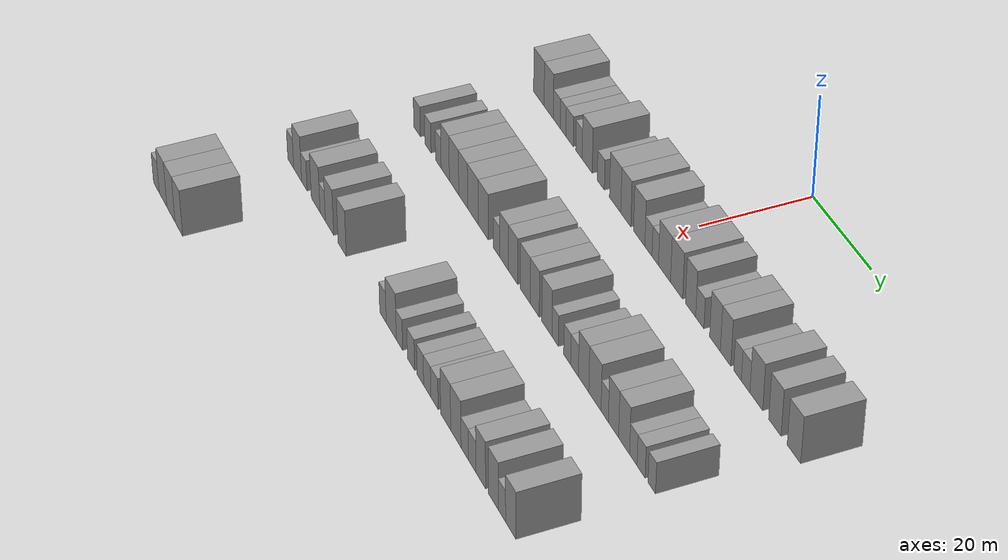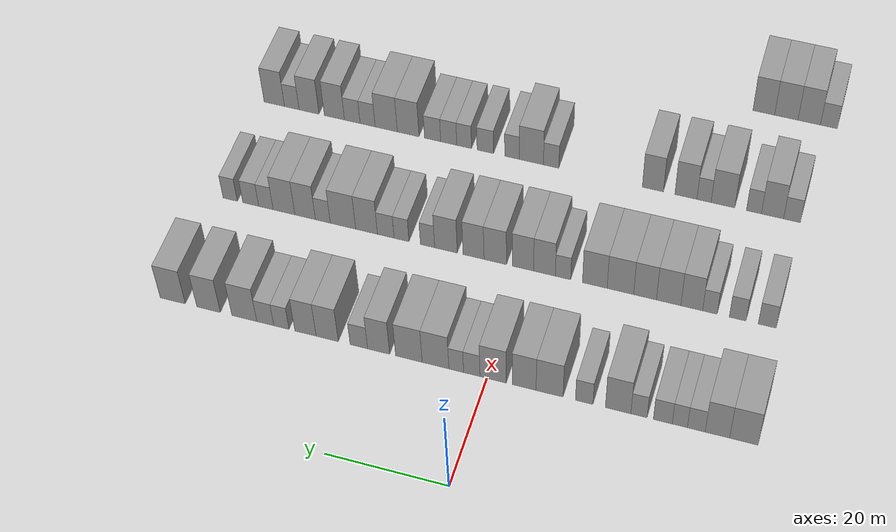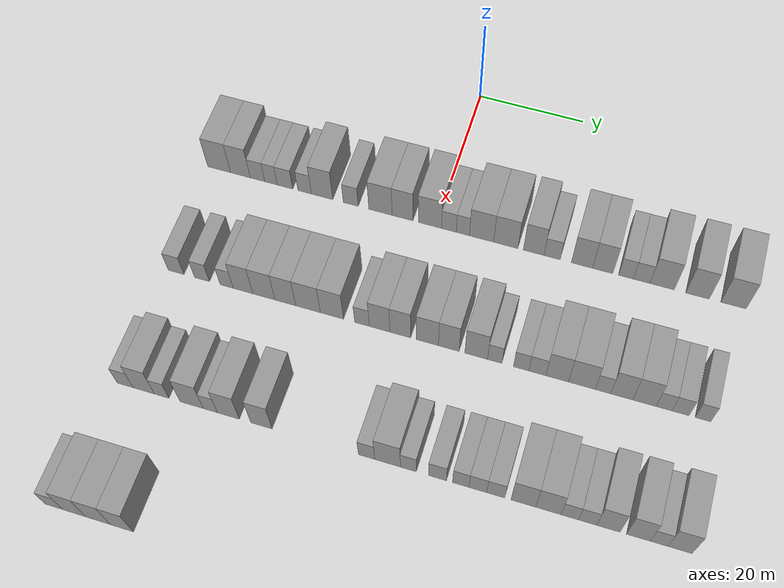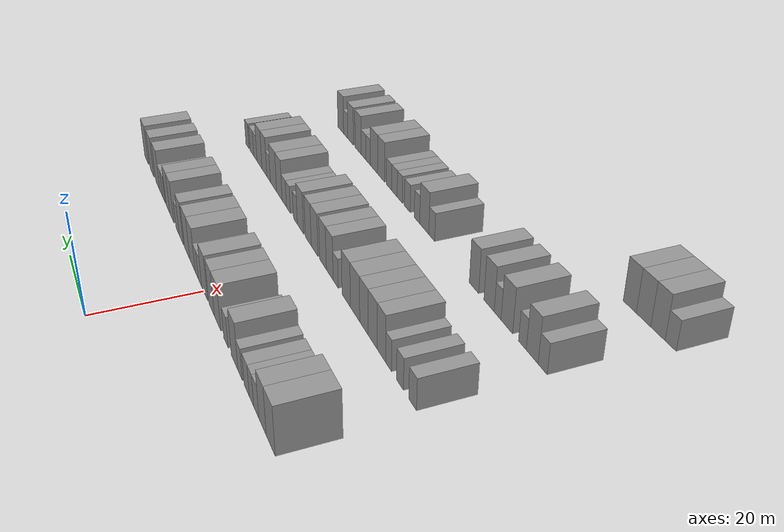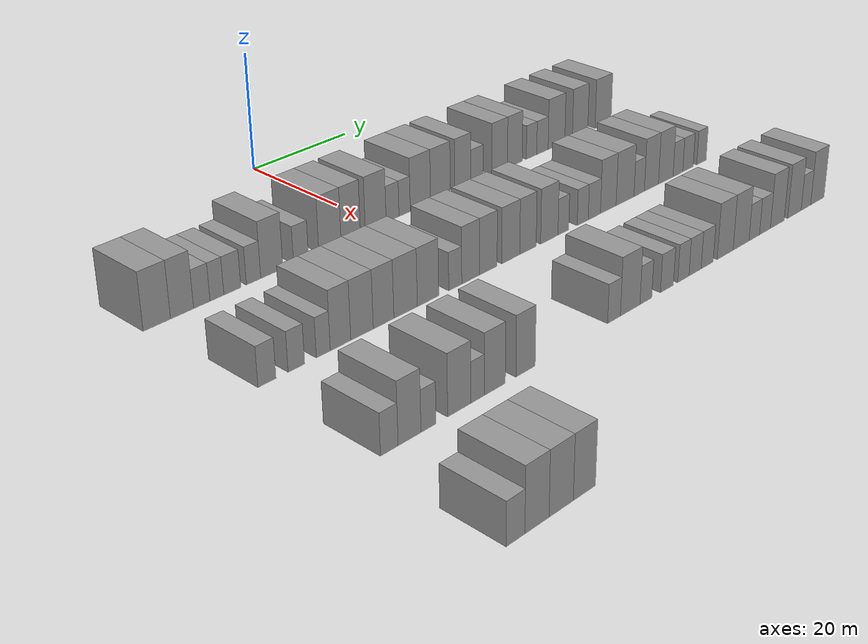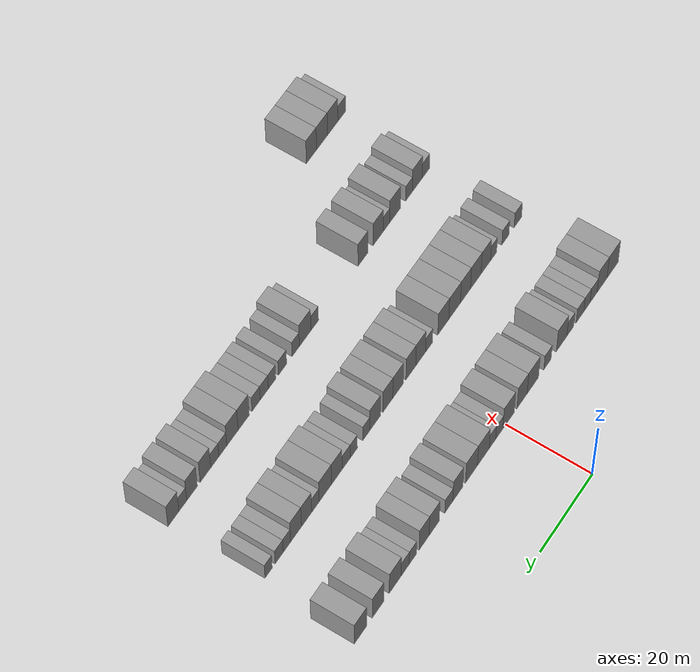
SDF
<sdf version="1.6">
 <world name="default">
  <model name="building_85">
   <static>1</static>
   <pose>25.0000 -41.2952 0 0.000000 0.000000 0.000000</pose>
   <link name="link">
    <pose>0 0 4.50 0 0 0</pose>
    <collision name="collision"><geometry><box><size>10.0000 4.4728 9.0000</size></box></geometry></collision>
    <visual name="visual">
     <cast_shadows>0</cast_shadows>
     <geometry><box><size>10.0000 4.4728 9.0000</size></box></geometry>
     <material>
      <script>
       <uri>model://grey_wall/materials/scripts</uri>
       <uri>model://grey_wall/materials/textures</uri>
       <name>vrc/grey_wall</name>
      </script>
     </material>
    </visual>
   </link>
  </model>
  <model name="building_86">
   <static>1</static>
   <pose>25.0000 -37.1239 0 0.000000 0.000000 0.000000</pose>
   <link name="link">
    <pose>0 0 4.50 0 0 0</pose>
    <collision name="collision"><geometry><box><size>10.0000 3.8698 9.0000</size></box></geometry></collision>
    <visual name="visual">
     <cast_shadows>0</cast_shadows>
     <geometry><box><size>10.0000 3.8698 9.0000</size></box></geometry>
     <material>
      <script>
       <uri>model://grey_wall/materials/scripts</uri>
       <uri>model://grey_wall/materials/textures</uri>
       <name>vrc/grey_wall</name>
      </script>
     </material>
    </visual>
   </link>
  </model>
  <model name="building_87">
   <static>1</static>
   <pose>25.0000 -33.7815 0 0.000000 0.000000 0.000000</pose>
   <link name="link">
    <pose>0 0 3.00 0 0 0</pose>
    <collision name="collision"><geometry><box><size>10.0000 2.8150 6.0000</size></box></geometry></collision>
    <visual name="visual">
     <cast_shadows>0</cast_shadows>
     <geometry><box><size>10.0000 2.8150 6.0000</size></box></geometry>
     <material>
      <script>
       <uri>model://grey_wall/materials/scripts</uri>
       <uri>model://grey_wall/materials/textures</uri>
       <name>vrc/grey_wall</name>
      </script>
     </material>
    </visual>
   </link>
  </model>
  <model name="building_88">
   <static>1</static>
   <pose>25.0000 -31.1665 0 0.000000 0.000000 0.000000</pose>
   <link name="link">
    <pose>0 0 3.00 0 0 0</pose>
    <collision name="collision"><geometry><box><size>10.0000 2.4151 6.0000</size></box></geometry></collision>
    <visual name="visual">
     <cast_shadows>0</cast_shadows>
     <geometry><box><size>10.0000 2.4151 6.0000</size></box></geometry>
     <material>
      <script>
       <uri>model://grey_wall/materials/scripts</uri>
       <uri>model://grey_wall/materials/textures</uri>
       <name>vrc/grey_wall</name>
      </script>
     </material>
    </visual>
   </link>
  </model>
  <model name="building_89">
   <static>1</static>
   <pose>25.0000 -28.4608 0 0.000000 0.000000 0.000000</pose>
   <link name="link">
    <pose>0 0 3.00 0 0 0</pose>
    <collision name="collision"><geometry><box><size>10.0000 2.9962 6.0000</size></box></geometry></collision>
    <visual name="visual">
     <cast_shadows>0</cast_shadows>
     <geometry><box><size>10.0000 2.9962 6.0000</size></box></geometry>
     <material>
      <script>
       <uri>model://grey_wall/materials/scripts</uri>
       <uri>model://grey_wall/materials/textures</uri>
       <name>vrc/grey_wall</name>
      </script>
     </material>
    </visual>
   </link>
  </model>
  <model name="building_90">
   <static>1</static>
   <pose>25.0000 -24.6631 0 0.000000 0.000000 0.000000</pose>
   <link name="link">
    <pose>0 0 3.00 0 0 0</pose>
    <collision name="collision"><geometry><box><size>10.0000 2.5992 6.0000</size></box></geometry></collision>
    <visual name="visual">
     <cast_shadows>0</cast_shadows>
     <geometry><box><size>10.0000 2.5992 6.0000</size></box></geometry>
     <material>
      <script>
       <uri>model://grey_wall/materials/scripts</uri>
       <uri>model://grey_wall/materials/textures</uri>
       <name>vrc/grey_wall</name>
      </script>
     </material>
    </visual>
   </link>
  </model>
  <model name="building_91">
   <static>1</static>
   <pose>25.0000 -21.3167 0 0.000000 0.000000 0.000000</pose>
   <link name="link">
    <pose>0 0 4.50 0 0 0</pose>
    <collision name="collision"><geometry><box><size>10.0000 4.0937 9.0000</size></box></geometry></collision>
    <visual name="visual">
     <cast_shadows>0</cast_shadows>
     <geometry><box><size>10.0000 4.0937 9.0000</size></box></geometry>
     <material>
      <script>
       <uri>model://grey_wall/materials/scripts</uri>
       <uri>model://grey_wall/materials/textures</uri>
       <name>vrc/grey_wall</name>
      </script>
     </material>
    </visual>
   </link>
  </model>
  <model name="building_92">
   <static>1</static>
   <pose>25.0000 -15.8494 0 0.000000 0.000000 0.000000</pose>
   <link name="link">
    <pose>0 0 3.00 0 0 0</pose>
    <collision name="collision"><geometry><box><size>10.0000 2.8408 6.0000</size></box></geometry></collision>
    <visual name="visual">
     <cast_shadows>0</cast_shadows>
     <geometry><box><size>10.0000 2.8408 6.0000</size></box></geometry>
     <material>
      <script>
       <uri>model://grey_wall/materials/scripts</uri>
       <uri>model://grey_wall/materials/textures</uri>
       <name>vrc/grey_wall</name>
      </script>
     </material>
    </visual>
   </link>
  </model>
  <model name="building_93">
   <static>1</static>
   <pose>25.0000 -10.2284 0 0.000000 0.000000 0.000000</pose>
   <link name="link">
    <pose>0 0 4.50 0 0 0</pose>
    <collision name="collision"><geometry><box><size>10.0000 4.4011 9.0000</size></box></geometry></collision>
    <visual name="visual">
     <cast_shadows>0</cast_shadows>
     <geometry><box><size>10.0000 4.4011 9.0000</size></box></geometry>
     <material>
      <script>
       <uri>model://grey_wall/materials/scripts</uri>
       <uri>model://grey_wall/materials/textures</uri>
       <name>vrc/grey_wall</name>
      </script>
     </material>
    </visual>
   </link>
  </model>
  <model name="building_94">
   <static>1</static>
   <pose>25.0000 -6.0852 0 0.000000 0.000000 0.000000</pose>
   <link name="link">
    <pose>0 0 4.50 0 0 0</pose>
    <collision name="collision"><geometry><box><size>10.0000 3.8854 9.0000</size></box></geometry></collision>
    <visual name="visual">
     <cast_shadows>0</cast_shadows>
     <geometry><box><size>10.0000 3.8854 9.0000</size></box></geometry>
     <material>
      <script>
       <uri>model://grey_wall/materials/scripts</uri>
       <uri>model://grey_wall/materials/textures</uri>
       <name>vrc/grey_wall</name>
      </script>
     </material>
    </visual>
   </link>
  </model>
  <model name="building_95">
   <static>1</static>
   <pose>25.0000 -0.9787 0 0.000000 0.000000 0.000000</pose>
   <link name="link">
    <pose>0 0 4.50 0 0 0</pose>
    <collision name="collision"><geometry><box><size>10.0000 4.3275 9.0000</size></box></geometry></collision>
    <visual name="visual">
     <cast_shadows>0</cast_shadows>
     <geometry><box><size>10.0000 4.3275 9.0000</size></box></geometry>
     <material>
      <script>
       <uri>model://grey_wall/materials/scripts</uri>
       <uri>model://grey_wall/materials/textures</uri>
       <name>vrc/grey_wall</name>
      </script>
     </material>
    </visual>
   </link>
  </model>
  <model name="building_96">
   <static>1</static>
   <pose>25.0000 2.5434 0 0.000000 0.000000 0.000000</pose>
   <link name="link">
    <pose>0 0 3.00 0 0 0</pose>
    <collision name="collision"><geometry><box><size>10.0000 2.7167 6.0000</size></box></geometry></collision>
    <visual name="visual">
     <cast_shadows>0</cast_shadows>
     <geometry><box><size>10.0000 2.7167 6.0000</size></box></geometry>
     <material>
      <script>
       <uri>model://grey_wall/materials/scripts</uri>
       <uri>model://grey_wall/materials/textures</uri>
       <name>vrc/grey_wall</name>
      </script>
     </material>
    </visual>
   </link>
  </model>
  <model name="building_97">
   <static>1</static>
   <pose>25.0000 5.1150 0 0.000000 0.000000 0.000000</pose>
   <link name="link">
    <pose>0 0 3.00 0 0 0</pose>
    <collision name="collision"><geometry><box><size>10.0000 2.4267 6.0000</size></box></geometry></collision>
    <visual name="visual">
     <cast_shadows>0</cast_shadows>
     <geometry><box><size>10.0000 2.4267 6.0000</size></box></geometry>
     <material>
      <script>
       <uri>model://grey_wall/materials/scripts</uri>
       <uri>model://grey_wall/materials/textures</uri>
       <name>vrc/grey_wall</name>
      </script>
     </material>
    </visual>
   </link>
  </model>
  <model name="building_98">
   <static>1</static>
   <pose>25.0000 8.5556 0 0.000000 0.000000 0.000000</pose>
   <link name="link">
    <pose>0 0 4.50 0 0 0</pose>
    <collision name="collision"><geometry><box><size>10.0000 4.4544 9.0000</size></box></geometry></collision>
    <visual name="visual">
     <cast_shadows>0</cast_shadows>
     <geometry><box><size>10.0000 4.4544 9.0000</size></box></geometry>
     <material>
      <script>
       <uri>model://grey_wall/materials/scripts</uri>
       <uri>model://grey_wall/materials/textures</uri>
       <name>vrc/grey_wall</name>
      </script>
     </material>
    </visual>
   </link>
  </model>
  <model name="building_99">
   <static>1</static>
   <pose>25.0000 12.9947 0 0.000000 0.000000 0.000000</pose>
   <link name="link">
    <pose>0 0 4.50 0 0 0</pose>
    <collision name="collision"><geometry><box><size>10.0000 4.4238 9.0000</size></box></geometry></collision>
    <visual name="visual">
     <cast_shadows>0</cast_shadows>
     <geometry><box><size>10.0000 4.4238 9.0000</size></box></geometry>
     <material>
      <script>
       <uri>model://grey_wall/materials/scripts</uri>
       <uri>model://grey_wall/materials/textures</uri>
       <name>vrc/grey_wall</name>
      </script>
     </material>
    </visual>
   </link>
  </model>
  <model name="building_100">
   <static>1</static>
   <pose>25.0000 18.0680 0 0.000000 0.000000 0.000000</pose>
   <link name="link">
    <pose>0 0 4.50 0 0 0</pose>
    <collision name="collision"><geometry><box><size>10.0000 3.7229 9.0000</size></box></geometry></collision>
    <visual name="visual">
     <cast_shadows>0</cast_shadows>
     <geometry><box><size>10.0000 3.7229 9.0000</size></box></geometry>
     <material>
      <script>
       <uri>model://grey_wall/materials/scripts</uri>
       <uri>model://grey_wall/materials/textures</uri>
       <name>vrc/grey_wall</name>
      </script>
     </material>
    </visual>
   </link>
  </model>
  <model name="building_101">
   <static>1</static>
   <pose>25.0000 21.3993 0 0.000000 0.000000 0.000000</pose>
   <link name="link">
    <pose>0 0 3.00 0 0 0</pose>
    <collision name="collision"><geometry><box><size>10.0000 2.9396 6.0000</size></box></geometry></collision>
    <visual name="visual">
     <cast_shadows>0</cast_shadows>
     <geometry><box><size>10.0000 2.9396 6.0000</size></box></geometry>
     <material>
      <script>
       <uri>model://grey_wall/materials/scripts</uri>
       <uri>model://grey_wall/materials/textures</uri>
       <name>vrc/grey_wall</name>
      </script>
     </material>
    </visual>
   </link>
  </model>
  <model name="building_102">
   <static>1</static>
   <pose>25.0000 26.7552 0 0.000000 0.000000 0.000000</pose>
   <link name="link">
    <pose>0 0 4.50 0 0 0</pose>
    <collision name="collision"><geometry><box><size>10.0000 3.7722 9.0000</size></box></geometry></collision>
    <visual name="visual">
     <cast_shadows>0</cast_shadows>
     <geometry><box><size>10.0000 3.7722 9.0000</size></box></geometry>
     <material>
      <script>
       <uri>model://grey_wall/materials/scripts</uri>
       <uri>model://grey_wall/materials/textures</uri>
       <name>vrc/grey_wall</name>
      </script>
     </material>
    </visual>
   </link>
  </model>
  <model name="building_103">
   <static>1</static>
   <pose>25.0000 30.4560 0 0.000000 0.000000 0.000000</pose>
   <link name="link">
    <pose>0 0 4.50 0 0 0</pose>
    <collision name="collision"><geometry><box><size>10.0000 3.6293 9.0000</size></box></geometry></collision>
    <visual name="visual">
     <cast_shadows>0</cast_shadows>
     <geometry><box><size>10.0000 3.6293 9.0000</size></box></geometry>
     <material>
      <script>
       <uri>model://grey_wall/materials/scripts</uri>
       <uri>model://grey_wall/materials/textures</uri>
       <name>vrc/grey_wall</name>
      </script>
     </material>
    </visual>
   </link>
  </model>
  <model name="building_104">
   <static>1</static>
   <pose>25.0000 34.5769 0 0.000000 0.000000 0.000000</pose>
   <link name="link">
    <pose>0 0 3.00 0 0 0</pose>
    <collision name="collision"><geometry><box><size>10.0000 2.6125 6.0000</size></box></geometry></collision>
    <visual name="visual">
     <cast_shadows>0</cast_shadows>
     <geometry><box><size>10.0000 2.6125 6.0000</size></box></geometry>
     <material>
      <script>
       <uri>model://grey_wall/materials/scripts</uri>
       <uri>model://grey_wall/materials/textures</uri>
       <name>vrc/grey_wall</name>
      </script>
     </material>
    </visual>
   </link>
  </model>
  <model name="building_105">
   <static>1</static>
   <pose>25.0000 37.3417 0 0.000000 0.000000 0.000000</pose>
   <link name="link">
    <pose>0 0 3.00 0 0 0</pose>
    <collision name="collision"><geometry><box><size>10.0000 2.9172 6.0000</size></box></geometry></collision>
    <visual name="visual">
     <cast_shadows>0</cast_shadows>
     <geometry><box><size>10.0000 2.9172 6.0000</size></box></geometry>
     <material>
      <script>
       <uri>model://grey_wall/materials/scripts</uri>
       <uri>model://grey_wall/materials/textures</uri>
       <name>vrc/grey_wall</name>
      </script>
     </material>
    </visual>
   </link>
  </model>
  <model name="building_106">
   <static>1</static>
   <pose>25.0000 40.9530 0 0.000000 0.000000 0.000000</pose>
   <link name="link">
    <pose>0 0 4.50 0 0 0</pose>
    <collision name="collision"><geometry><box><size>10.0000 4.3053 9.0000</size></box></geometry></collision>
    <visual name="visual">
     <cast_shadows>0</cast_shadows>
     <geometry><box><size>10.0000 4.3053 9.0000</size></box></geometry>
     <material>
      <script>
       <uri>model://grey_wall/materials/scripts</uri>
       <uri>model://grey_wall/materials/textures</uri>
       <name>vrc/grey_wall</name>
      </script>
     </material>
    </visual>
   </link>
  </model>
  <model name="building_107">
   <static>1</static>
   <pose>25.0000 47.1540 0 0.000000 0.000000 0.000000</pose>
   <link name="link">
    <pose>0 0 4.50 0 0 0</pose>
    <collision name="collision"><geometry><box><size>10.0000 4.0968 9.0000</size></box></geometry></collision>
    <visual name="visual">
     <cast_shadows>0</cast_shadows>
     <geometry><box><size>10.0000 4.0968 9.0000</size></box></geometry>
     <material>
      <script>
       <uri>model://grey_wall/materials/scripts</uri>
       <uri>model://grey_wall/materials/textures</uri>
       <name>vrc/grey_wall</name>
      </script>
     </material>
    </visual>
   </link>
  </model>
  <model name="building_108">
   <static>1</static>
   <pose>25.0000 53.3957 0 0.000000 0.000000 0.000000</pose>
   <link name="link">
    <pose>0 0 4.50 0 0 0</pose>
    <collision name="collision"><geometry><box><size>10.0000 4.3865 9.0000</size></box></geometry></collision>
    <visual name="visual">
     <cast_shadows>0</cast_shadows>
     <geometry><box><size>10.0000 4.3865 9.0000</size></box></geometry>
     <material>
      <script>
       <uri>model://grey_wall/materials/scripts</uri>
       <uri>model://grey_wall/materials/textures</uri>
       <name>vrc/grey_wall</name>
      </script>
     </material>
    </visual>
   </link>
  </model>
  <model name="building_282">
   <static>1</static>
   <pose>47.0000 -40.4966 0 0.000000 0.000000 0.000000</pose>
   <link name="link">
    <pose>0 0 3.00 0 0 0</pose>
    <collision name="collision"><geometry><box><size>10.0000 2.9390 6.0000</size></box></geometry></collision>
    <visual name="visual">
     <cast_shadows>0</cast_shadows>
     <geometry><box><size>10.0000 2.9390 6.0000</size></box></geometry>
     <material>
      <script>
       <uri>model://grey_wall/materials/scripts</uri>
       <uri>model://grey_wall/materials/textures</uri>
       <name>vrc/grey_wall</name>
      </script>
     </material>
    </visual>
   </link>
  </model>
  <model name="building_283">
   <static>1</static>
   <pose>47.0000 -35.6408 0 0.000000 0.000000 0.000000</pose>
   <link name="link">
    <pose>0 0 3.00 0 0 0</pose>
    <collision name="collision"><geometry><box><size>10.0000 2.7726 6.0000</size></box></geometry></collision>
    <visual name="visual">
     <cast_shadows>0</cast_shadows>
     <geometry><box><size>10.0000 2.7726 6.0000</size></box></geometry>
     <material>
      <script>
       <uri>model://grey_wall/materials/scripts</uri>
       <uri>model://grey_wall/materials/textures</uri>
       <name>vrc/grey_wall</name>
      </script>
     </material>
    </visual>
   </link>
  </model>
  <model name="building_284">
   <static>1</static>
   <pose>47.0000 -31.0491 0 0.000000 0.000000 0.000000</pose>
   <link name="link">
    <pose>0 0 3.00 0 0 0</pose>
    <collision name="collision"><geometry><box><size>10.0000 2.4108 6.0000</size></box></geometry></collision>
    <visual name="visual">
     <cast_shadows>0</cast_shadows>
     <geometry><box><size>10.0000 2.4108 6.0000</size></box></geometry>
     <material>
      <script>
       <uri>model://grey_wall/materials/scripts</uri>
       <uri>model://grey_wall/materials/textures</uri>
       <name>vrc/grey_wall</name>
      </script>
     </material>
    </visual>
   </link>
  </model>
  <model name="building_285">
   <static>1</static>
   <pose>47.0000 -28.0377 0 0.000000 0.000000 0.000000</pose>
   <link name="link">
    <pose>0 0 4.50 0 0 0</pose>
    <collision name="collision"><geometry><box><size>10.0000 3.6120 9.0000</size></box></geometry></collision>
    <visual name="visual">
     <cast_shadows>0</cast_shadows>
     <geometry><box><size>10.0000 3.6120 9.0000</size></box></geometry>
     <material>
      <script>
       <uri>model://grey_wall/materials/scripts</uri>
       <uri>model://grey_wall/materials/textures</uri>
       <name>vrc/grey_wall</name>
      </script>
     </material>
    </visual>
   </link>
  </model>
  <model name="building_286">
   <static>1</static>
   <pose>47.0000 -24.1980 0 0.000000 0.000000 0.000000</pose>
   <link name="link">
    <pose>0 0 4.50 0 0 0</pose>
    <collision name="collision"><geometry><box><size>10.0000 4.0673 9.0000</size></box></geometry></collision>
    <visual name="visual">
     <cast_shadows>0</cast_shadows>
     <geometry><box><size>10.0000 4.0673 9.0000</size></box></geometry>
     <material>
      <script>
       <uri>model://grey_wall/materials/scripts</uri>
       <uri>model://grey_wall/materials/textures</uri>
       <name>vrc/grey_wall</name>
      </script>
     </material>
    </visual>
   </link>
  </model>
  <model name="building_287">
   <static>1</static>
   <pose>47.0000 -20.2529 0 0.000000 0.000000 0.000000</pose>
   <link name="link">
    <pose>0 0 4.50 0 0 0</pose>
    <collision name="collision"><geometry><box><size>10.0000 3.8229 9.0000</size></box></geometry></collision>
    <visual name="visual">
     <cast_shadows>0</cast_shadows>
     <geometry><box><size>10.0000 3.8229 9.0000</size></box></geometry>
     <material>
      <script>
       <uri>model://grey_wall/materials/scripts</uri>
       <uri>model://grey_wall/materials/textures</uri>
       <name>vrc/grey_wall</name>
      </script>
     </material>
    </visual>
   </link>
  </model>
  <model name="building_288">
   <static>1</static>
   <pose>47.0000 -16.1085 0 0.000000 0.000000 0.000000</pose>
   <link name="link">
    <pose>0 0 4.50 0 0 0</pose>
    <collision name="collision"><geometry><box><size>10.0000 4.4660 9.0000</size></box></geometry></collision>
    <visual name="visual">
     <cast_shadows>0</cast_shadows>
     <geometry><box><size>10.0000 4.4660 9.0000</size></box></geometry>
     <material>
      <script>
       <uri>model://grey_wall/materials/scripts</uri>
       <uri>model://grey_wall/materials/textures</uri>
       <name>vrc/grey_wall</name>
      </script>
     </material>
    </visual>
   </link>
  </model>
  <model name="building_289">
   <static>1</static>
   <pose>47.0000 -11.7904 0 0.000000 0.000000 0.000000</pose>
   <link name="link">
    <pose>0 0 4.50 0 0 0</pose>
    <collision name="collision"><geometry><box><size>10.0000 4.1702 9.0000</size></box></geometry></collision>
    <visual name="visual">
     <cast_shadows>0</cast_shadows>
     <geometry><box><size>10.0000 4.1702 9.0000</size></box></geometry>
     <material>
      <script>
       <uri>model://grey_wall/materials/scripts</uri>
       <uri>model://grey_wall/materials/textures</uri>
       <name>vrc/grey_wall</name>
      </script>
     </material>
    </visual>
   </link>
  </model>
  <model name="building_290">
   <static>1</static>
   <pose>47.0000 -6.3978 0 0.000000 0.000000 0.000000</pose>
   <link name="link">
    <pose>0 0 3.00 0 0 0</pose>
    <collision name="collision"><geometry><box><size>10.0000 2.6151 6.0000</size></box></geometry></collision>
    <visual name="visual">
     <cast_shadows>0</cast_shadows>
     <geometry><box><size>10.0000 2.6151 6.0000</size></box></geometry>
     <material>
      <script>
       <uri>model://grey_wall/materials/scripts</uri>
       <uri>model://grey_wall/materials/textures</uri>
       <name>vrc/grey_wall</name>
      </script>
     </material>
    </visual>
   </link>
  </model>
  <model name="building_291">
   <static>1</static>
   <pose>47.0000 -3.2429 0 0.000000 0.000000 0.000000</pose>
   <link name="link">
    <pose>0 0 4.50 0 0 0</pose>
    <collision name="collision"><geometry><box><size>10.0000 3.6947 9.0000</size></box></geometry></collision>
    <visual name="visual">
     <cast_shadows>0</cast_shadows>
     <geometry><box><size>10.0000 3.6947 9.0000</size></box></geometry>
     <material>
      <script>
       <uri>model://grey_wall/materials/scripts</uri>
       <uri>model://grey_wall/materials/textures</uri>
       <name>vrc/grey_wall</name>
      </script>
     </material>
    </visual>
   </link>
  </model>
  <model name="building_292">
   <static>1</static>
   <pose>47.0000 0.4340 0 0.000000 0.000000 0.000000</pose>
   <link name="link">
    <pose>0 0 4.50 0 0 0</pose>
    <collision name="collision"><geometry><box><size>10.0000 3.6590 9.0000</size></box></geometry></collision>
    <visual name="visual">
     <cast_shadows>0</cast_shadows>
     <geometry><box><size>10.0000 3.6590 9.0000</size></box></geometry>
     <material>
      <script>
       <uri>model://grey_wall/materials/scripts</uri>
       <uri>model://grey_wall/materials/textures</uri>
       <name>vrc/grey_wall</name>
      </script>
     </material>
    </visual>
   </link>
  </model>
  <model name="building_293">
   <static>1</static>
   <pose>47.0000 5.2074 0 0.000000 0.000000 0.000000</pose>
   <link name="link">
    <pose>0 0 4.50 0 0 0</pose>
    <collision name="collision"><geometry><box><size>10.0000 3.8877 9.0000</size></box></geometry></collision>
    <visual name="visual">
     <cast_shadows>0</cast_shadows>
     <geometry><box><size>10.0000 3.8877 9.0000</size></box></geometry>
     <material>
      <script>
       <uri>model://grey_wall/materials/scripts</uri>
       <uri>model://grey_wall/materials/textures</uri>
       <name>vrc/grey_wall</name>
      </script>
     </material>
    </visual>
   </link>
  </model>
  <model name="building_294">
   <static>1</static>
   <pose>47.0000 8.9621 0 0.000000 0.000000 0.000000</pose>
   <link name="link">
    <pose>0 0 4.50 0 0 0</pose>
    <collision name="collision"><geometry><box><size>10.0000 3.6218 9.0000</size></box></geometry></collision>
    <visual name="visual">
     <cast_shadows>0</cast_shadows>
     <geometry><box><size>10.0000 3.6218 9.0000</size></box></geometry>
     <material>
      <script>
       <uri>model://grey_wall/materials/scripts</uri>
       <uri>model://grey_wall/materials/textures</uri>
       <name>vrc/grey_wall</name>
      </script>
     </material>
    </visual>
   </link>
  </model>
  <model name="building_295">
   <static>1</static>
   <pose>47.0000 13.7423 0 0.000000 0.000000 0.000000</pose>
   <link name="link">
    <pose>0 0 4.50 0 0 0</pose>
    <collision name="collision"><geometry><box><size>10.0000 3.9386 9.0000</size></box></geometry></collision>
    <visual name="visual">
     <cast_shadows>0</cast_shadows>
     <geometry><box><size>10.0000 3.9386 9.0000</size></box></geometry>
     <material>
      <script>
       <uri>model://grey_wall/materials/scripts</uri>
       <uri>model://grey_wall/materials/textures</uri>
       <name>vrc/grey_wall</name>
      </script>
     </material>
    </visual>
   </link>
  </model>
  <model name="building_296">
   <static>1</static>
   <pose>47.0000 16.9506 0 0.000000 0.000000 0.000000</pose>
   <link name="link">
    <pose>0 0 3.00 0 0 0</pose>
    <collision name="collision"><geometry><box><size>10.0000 2.4780 6.0000</size></box></geometry></collision>
    <visual name="visual">
     <cast_shadows>0</cast_shadows>
     <geometry><box><size>10.0000 2.4780 6.0000</size></box></geometry>
     <material>
      <script>
       <uri>model://grey_wall/materials/scripts</uri>
       <uri>model://grey_wall/materials/textures</uri>
       <name>vrc/grey_wall</name>
      </script>
     </material>
    </visual>
   </link>
  </model>
  <model name="building_297">
   <static>1</static>
   <pose>47.0000 21.4986 0 0.000000 0.000000 0.000000</pose>
   <link name="link">
    <pose>0 0 3.00 0 0 0</pose>
    <collision name="collision"><geometry><box><size>10.0000 2.6181 6.0000</size></box></geometry></collision>
    <visual name="visual">
     <cast_shadows>0</cast_shadows>
     <geometry><box><size>10.0000 2.6181 6.0000</size></box></geometry>
     <material>
      <script>
       <uri>model://grey_wall/materials/scripts</uri>
       <uri>model://grey_wall/materials/textures</uri>
       <name>vrc/grey_wall</name>
      </script>
     </material>
    </visual>
   </link>
  </model>
  <model name="building_298">
   <static>1</static>
   <pose>47.0000 24.2718 0 0.000000 0.000000 0.000000</pose>
   <link name="link">
    <pose>0 0 3.00 0 0 0</pose>
    <collision name="collision"><geometry><box><size>10.0000 2.9282 6.0000</size></box></geometry></collision>
    <visual name="visual">
     <cast_shadows>0</cast_shadows>
     <geometry><box><size>10.0000 2.9282 6.0000</size></box></geometry>
     <material>
      <script>
       <uri>model://grey_wall/materials/scripts</uri>
       <uri>model://grey_wall/materials/textures</uri>
       <name>vrc/grey_wall</name>
      </script>
     </material>
    </visual>
   </link>
  </model>
  <model name="building_299">
   <static>1</static>
   <pose>47.0000 27.6601 0 0.000000 0.000000 0.000000</pose>
   <link name="link">
    <pose>0 0 4.50 0 0 0</pose>
    <collision name="collision"><geometry><box><size>10.0000 3.8485 9.0000</size></box></geometry></collision>
    <visual name="visual">
     <cast_shadows>0</cast_shadows>
     <geometry><box><size>10.0000 3.8485 9.0000</size></box></geometry>
     <material>
      <script>
       <uri>model://grey_wall/materials/scripts</uri>
       <uri>model://grey_wall/materials/textures</uri>
       <name>vrc/grey_wall</name>
      </script>
     </material>
    </visual>
   </link>
  </model>
  <model name="building_300">
   <static>1</static>
   <pose>47.0000 31.8330 0 0.000000 0.000000 0.000000</pose>
   <link name="link">
    <pose>0 0 4.50 0 0 0</pose>
    <collision name="collision"><geometry><box><size>10.0000 4.4974 9.0000</size></box></geometry></collision>
    <visual name="visual">
     <cast_shadows>0</cast_shadows>
     <geometry><box><size>10.0000 4.4974 9.0000</size></box></geometry>
     <material>
      <script>
       <uri>model://grey_wall/materials/scripts</uri>
       <uri>model://grey_wall/materials/textures</uri>
       <name>vrc/grey_wall</name>
      </script>
     </material>
    </visual>
   </link>
  </model>
  <model name="building_301">
   <static>1</static>
   <pose>47.0000 35.4019 0 0.000000 0.000000 0.000000</pose>
   <link name="link">
    <pose>0 0 3.00 0 0 0</pose>
    <collision name="collision"><geometry><box><size>10.0000 2.6404 6.0000</size></box></geometry></collision>
    <visual name="visual">
     <cast_shadows>0</cast_shadows>
     <geometry><box><size>10.0000 2.6404 6.0000</size></box></geometry>
     <material>
      <script>
       <uri>model://grey_wall/materials/scripts</uri>
       <uri>model://grey_wall/materials/textures</uri>
       <name>vrc/grey_wall</name>
      </script>
     </material>
    </visual>
   </link>
  </model>
  <model name="building_302">
   <static>1</static>
   <pose>47.0000 38.5589 0 0.000000 0.000000 0.000000</pose>
   <link name="link">
    <pose>0 0 4.50 0 0 0</pose>
    <collision name="collision"><geometry><box><size>10.0000 3.6736 9.0000</size></box></geometry></collision>
    <visual name="visual">
     <cast_shadows>0</cast_shadows>
     <geometry><box><size>10.0000 3.6736 9.0000</size></box></geometry>
     <material>
      <script>
       <uri>model://grey_wall/materials/scripts</uri>
       <uri>model://grey_wall/materials/textures</uri>
       <name>vrc/grey_wall</name>
      </script>
     </material>
    </visual>
   </link>
  </model>
  <model name="building_303">
   <static>1</static>
   <pose>47.0000 42.3460 0 0.000000 0.000000 0.000000</pose>
   <link name="link">
    <pose>0 0 4.50 0 0 0</pose>
    <collision name="collision"><geometry><box><size>10.0000 3.9005 9.0000</size></box></geometry></collision>
    <visual name="visual">
     <cast_shadows>0</cast_shadows>
     <geometry><box><size>10.0000 3.9005 9.0000</size></box></geometry>
     <material>
      <script>
       <uri>model://grey_wall/materials/scripts</uri>
       <uri>model://grey_wall/materials/textures</uri>
       <name>vrc/grey_wall</name>
      </script>
     </material>
    </visual>
   </link>
  </model>
  <model name="building_304">
   <static>1</static>
   <pose>47.0000 45.6006 0 0.000000 0.000000 0.000000</pose>
   <link name="link">
    <pose>0 0 3.00 0 0 0</pose>
    <collision name="collision"><geometry><box><size>10.0000 2.6086 6.0000</size></box></geometry></collision>
    <visual name="visual">
     <cast_shadows>0</cast_shadows>
     <geometry><box><size>10.0000 2.6086 6.0000</size></box></geometry>
     <material>
      <script>
       <uri>model://grey_wall/materials/scripts</uri>
       <uri>model://grey_wall/materials/textures</uri>
       <name>vrc/grey_wall</name>
      </script>
     </material>
    </visual>
   </link>
  </model>
  <model name="building_305">
   <static>1</static>
   <pose>47.0000 48.3323 0 0.000000 0.000000 0.000000</pose>
   <link name="link">
    <pose>0 0 3.00 0 0 0</pose>
    <collision name="collision"><geometry><box><size>10.0000 2.8547 6.0000</size></box></geometry></collision>
    <visual name="visual">
     <cast_shadows>0</cast_shadows>
     <geometry><box><size>10.0000 2.8547 6.0000</size></box></geometry>
     <material>
      <script>
       <uri>model://grey_wall/materials/scripts</uri>
       <uri>model://grey_wall/materials/textures</uri>
       <name>vrc/grey_wall</name>
      </script>
     </material>
    </visual>
   </link>
  </model>
  <model name="building_306">
   <static>1</static>
   <pose>47.0000 52.0493 0 0.000000 0.000000 0.000000</pose>
   <link name="link">
    <pose>0 0 3.00 0 0 0</pose>
    <collision name="collision"><geometry><box><size>10.0000 2.5794 6.0000</size></box></geometry></collision>
    <visual name="visual">
     <cast_shadows>0</cast_shadows>
     <geometry><box><size>10.0000 2.5794 6.0000</size></box></geometry>
     <material>
      <script>
       <uri>model://grey_wall/materials/scripts</uri>
       <uri>model://grey_wall/materials/textures</uri>
       <name>vrc/grey_wall</name>
      </script>
     </material>
    </visual>
   </link>
  </model>
  <model name="building_466">
   <static>1</static>
   <pose>69.0000 -40.2603 0 0.000000 0.000000 0.000000</pose>
   <link name="link">
    <pose>0 0 3.00 0 0 0</pose>
    <collision name="collision"><geometry><box><size>10.0000 2.8595 6.0000</size></box></geometry></collision>
    <visual name="visual">
     <cast_shadows>0</cast_shadows>
     <geometry><box><size>10.0000 2.8595 6.0000</size></box></geometry>
     <material>
      <script>
       <uri>model://grey_wall/materials/scripts</uri>
       <uri>model://grey_wall/materials/textures</uri>
       <name>vrc/grey_wall</name>
      </script>
     </material>
    </visual>
   </link>
  </model>
  <model name="building_467">
   <static>1</static>
   <pose>69.0000 -36.9285 0 0.000000 0.000000 0.000000</pose>
   <link name="link">
    <pose>0 0 4.50 0 0 0</pose>
    <collision name="collision"><geometry><box><size>10.0000 3.8042 9.0000</size></box></geometry></collision>
    <visual name="visual">
     <cast_shadows>0</cast_shadows>
     <geometry><box><size>10.0000 3.8042 9.0000</size></box></geometry>
     <material>
      <script>
       <uri>model://grey_wall/materials/scripts</uri>
       <uri>model://grey_wall/materials/textures</uri>
       <name>vrc/grey_wall</name>
      </script>
     </material>
    </visual>
   </link>
  </model>
  <model name="building_468">
   <static>1</static>
   <pose>69.0000 -33.7433 0 0.000000 0.000000 0.000000</pose>
   <link name="link">
    <pose>0 0 3.00 0 0 0</pose>
    <collision name="collision"><geometry><box><size>10.0000 2.5661 6.0000</size></box></geometry></collision>
    <visual name="visual">
     <cast_shadows>0</cast_shadows>
     <geometry><box><size>10.0000 2.5661 6.0000</size></box></geometry>
     <material>
      <script>
       <uri>model://grey_wall/materials/scripts</uri>
       <uri>model://grey_wall/materials/textures</uri>
       <name>vrc/grey_wall</name>
      </script>
     </material>
    </visual>
   </link>
  </model>
  <model name="building_469">
   <static>1</static>
   <pose>69.0000 -28.4157 0 0.000000 0.000000 0.000000</pose>
   <link name="link">
    <pose>0 0 4.50 0 0 0</pose>
    <collision name="collision"><geometry><box><size>10.0000 4.0891 9.0000</size></box></geometry></collision>
    <visual name="visual">
     <cast_shadows>0</cast_shadows>
     <geometry><box><size>10.0000 4.0891 9.0000</size></box></geometry>
     <material>
      <script>
       <uri>model://grey_wall/materials/scripts</uri>
       <uri>model://grey_wall/materials/textures</uri>
       <name>vrc/grey_wall</name>
      </script>
     </material>
    </visual>
   </link>
  </model>
  <model name="building_470">
   <static>1</static>
   <pose>69.0000 -25.1430 0 0.000000 0.000000 0.000000</pose>
   <link name="link">
    <pose>0 0 3.00 0 0 0</pose>
    <collision name="collision"><geometry><box><size>10.0000 2.4563 6.0000</size></box></geometry></collision>
    <visual name="visual">
     <cast_shadows>0</cast_shadows>
     <geometry><box><size>10.0000 2.4563 6.0000</size></box></geometry>
     <material>
      <script>
       <uri>model://grey_wall/materials/scripts</uri>
       <uri>model://grey_wall/materials/textures</uri>
       <name>vrc/grey_wall</name>
      </script>
     </material>
    </visual>
   </link>
  </model>
  <model name="building_471">
   <static>1</static>
   <pose>69.0000 -21.9995 0 0.000000 0.000000 0.000000</pose>
   <link name="link">
    <pose>0 0 4.50 0 0 0</pose>
    <collision name="collision"><geometry><box><size>10.0000 3.8306 9.0000</size></box></geometry></collision>
    <visual name="visual">
     <cast_shadows>0</cast_shadows>
     <geometry><box><size>10.0000 3.8306 9.0000</size></box></geometry>
     <material>
      <script>
       <uri>model://grey_wall/materials/scripts</uri>
       <uri>model://grey_wall/materials/textures</uri>
       <name>vrc/grey_wall</name>
      </script>
     </material>
    </visual>
   </link>
  </model>
  <model name="building_472">
   <static>1</static>
   <pose>69.0000 -16.2408 0 0.000000 0.000000 0.000000</pose>
   <link name="link">
    <pose>0 0 4.50 0 0 0</pose>
    <collision name="collision"><geometry><box><size>10.0000 3.6868 9.0000</size></box></geometry></collision>
    <visual name="visual">
     <cast_shadows>0</cast_shadows>
     <geometry><box><size>10.0000 3.6868 9.0000</size></box></geometry>
     <material>
      <script>
       <uri>model://grey_wall/materials/scripts</uri>
       <uri>model://grey_wall/materials/textures</uri>
       <name>vrc/grey_wall</name>
      </script>
     </material>
    </visual>
   </link>
  </model>
  <model name="building_473">
   <static>1</static>
   <pose>69.0000 1.7168 0 0.000000 0.000000 0.000000</pose>
   <link name="link">
    <pose>0 0 3.00 0 0 0</pose>
    <collision name="collision"><geometry><box><size>10.0000 2.7428 6.0000</size></box></geometry></collision>
    <visual name="visual">
     <cast_shadows>0</cast_shadows>
     <geometry><box><size>10.0000 2.7428 6.0000</size></box></geometry>
     <material>
      <script>
       <uri>model://grey_wall/materials/scripts</uri>
       <uri>model://grey_wall/materials/textures</uri>
       <name>vrc/grey_wall</name>
      </script>
     </material>
    </visual>
   </link>
  </model>
  <model name="building_474">
   <static>1</static>
   <pose>69.0000 5.2394 0 0.000000 0.000000 0.000000</pose>
   <link name="link">
    <pose>0 0 4.50 0 0 0</pose>
    <collision name="collision"><geometry><box><size>10.0000 4.3022 9.0000</size></box></geometry></collision>
    <visual name="visual">
     <cast_shadows>0</cast_shadows>
     <geometry><box><size>10.0000 4.3022 9.0000</size></box></geometry>
     <material>
      <script>
       <uri>model://grey_wall/materials/scripts</uri>
       <uri>model://grey_wall/materials/textures</uri>
       <name>vrc/grey_wall</name>
      </script>
     </material>
    </visual>
   </link>
  </model>
  <model name="building_475">
   <static>1</static>
   <pose>69.0000 8.7131 0 0.000000 0.000000 0.000000</pose>
   <link name="link">
    <pose>0 0 3.00 0 0 0</pose>
    <collision name="collision"><geometry><box><size>10.0000 2.6453 6.0000</size></box></geometry></collision>
    <visual name="visual">
     <cast_shadows>0</cast_shadows>
     <geometry><box><size>10.0000 2.6453 6.0000</size></box></geometry>
     <material>
      <script>
       <uri>model://grey_wall/materials/scripts</uri>
       <uri>model://grey_wall/materials/textures</uri>
       <name>vrc/grey_wall</name>
      </script>
     </material>
    </visual>
   </link>
  </model>
  <model name="building_476">
   <static>1</static>
   <pose>69.0000 13.5274 0 0.000000 0.000000 0.000000</pose>
   <link name="link">
    <pose>0 0 3.00 0 0 0</pose>
    <collision name="collision"><geometry><box><size>10.0000 2.9832 6.0000</size></box></geometry></collision>
    <visual name="visual">
     <cast_shadows>0</cast_shadows>
     <geometry><box><size>10.0000 2.9832 6.0000</size></box></geometry>
     <material>
      <script>
       <uri>model://grey_wall/materials/scripts</uri>
       <uri>model://grey_wall/materials/textures</uri>
       <name>vrc/grey_wall</name>
      </script>
     </material>
    </visual>
   </link>
  </model>
  <model name="building_477">
   <static>1</static>
   <pose>69.0000 17.3593 0 0.000000 0.000000 0.000000</pose>
   <link name="link">
    <pose>0 0 3.00 0 0 0</pose>
    <collision name="collision"><geometry><box><size>10.0000 2.6807 6.0000</size></box></geometry></collision>
    <visual name="visual">
     <cast_shadows>0</cast_shadows>
     <geometry><box><size>10.0000 2.6807 6.0000</size></box></geometry>
     <material>
      <script>
       <uri>model://grey_wall/materials/scripts</uri>
       <uri>model://grey_wall/materials/textures</uri>
       <name>vrc/grey_wall</name>
      </script>
     </material>
    </visual>
   </link>
  </model>
  <model name="building_478">
   <static>1</static>
   <pose>69.0000 20.1623 0 0.000000 0.000000 0.000000</pose>
   <link name="link">
    <pose>0 0 3.00 0 0 0</pose>
    <collision name="collision"><geometry><box><size>10.0000 2.9253 6.0000</size></box></geometry></collision>
    <visual name="visual">
     <cast_shadows>0</cast_shadows>
     <geometry><box><size>10.0000 2.9253 6.0000</size></box></geometry>
     <material>
      <script>
       <uri>model://grey_wall/materials/scripts</uri>
       <uri>model://grey_wall/materials/textures</uri>
       <name>vrc/grey_wall</name>
      </script>
     </material>
    </visual>
   </link>
  </model>
  <model name="building_479">
   <static>1</static>
   <pose>69.0000 23.0969 0 0.000000 0.000000 0.000000</pose>
   <link name="link">
    <pose>0 0 3.00 0 0 0</pose>
    <collision name="collision"><geometry><box><size>10.0000 2.9439 6.0000</size></box></geometry></collision>
    <visual name="visual">
     <cast_shadows>0</cast_shadows>
     <geometry><box><size>10.0000 2.9439 6.0000</size></box></geometry>
     <material>
      <script>
       <uri>model://grey_wall/materials/scripts</uri>
       <uri>model://grey_wall/materials/textures</uri>
       <name>vrc/grey_wall</name>
      </script>
     </material>
    </visual>
   </link>
  </model>
  <model name="building_480">
   <static>1</static>
   <pose>69.0000 27.5644 0 0.000000 0.000000 0.000000</pose>
   <link name="link">
    <pose>0 0 4.50 0 0 0</pose>
    <collision name="collision"><geometry><box><size>10.0000 3.9912 9.0000</size></box></geometry></collision>
    <visual name="visual">
     <cast_shadows>0</cast_shadows>
     <geometry><box><size>10.0000 3.9912 9.0000</size></box></geometry>
     <material>
      <script>
       <uri>model://grey_wall/materials/scripts</uri>
       <uri>model://grey_wall/materials/textures</uri>
       <name>vrc/grey_wall</name>
      </script>
     </material>
    </visual>
   </link>
  </model>
  <model name="building_481">
   <static>1</static>
   <pose>69.0000 31.5953 0 0.000000 0.000000 0.000000</pose>
   <link name="link">
    <pose>0 0 4.50 0 0 0</pose>
    <collision name="collision"><geometry><box><size>10.0000 4.0706 9.0000</size></box></geometry></collision>
    <visual name="visual">
     <cast_shadows>0</cast_shadows>
     <geometry><box><size>10.0000 4.0706 9.0000</size></box></geometry>
     <material>
      <script>
       <uri>model://grey_wall/materials/scripts</uri>
       <uri>model://grey_wall/materials/textures</uri>
       <name>vrc/grey_wall</name>
      </script>
     </material>
    </visual>
   </link>
  </model>
  <model name="building_482">
   <static>1</static>
   <pose>69.0000 35.0216 0 0.000000 0.000000 0.000000</pose>
   <link name="link">
    <pose>0 0 3.00 0 0 0</pose>
    <collision name="collision"><geometry><box><size>10.0000 2.7820 6.0000</size></box></geometry></collision>
    <visual name="visual">
     <cast_shadows>0</cast_shadows>
     <geometry><box><size>10.0000 2.7820 6.0000</size></box></geometry>
     <material>
      <script>
       <uri>model://grey_wall/materials/scripts</uri>
       <uri>model://grey_wall/materials/textures</uri>
       <name>vrc/grey_wall</name>
      </script>
     </material>
    </visual>
   </link>
  </model>
  <model name="building_483">
   <static>1</static>
   <pose>69.0000 37.8592 0 0.000000 0.000000 0.000000</pose>
   <link name="link">
    <pose>0 0 3.00 0 0 0</pose>
    <collision name="collision"><geometry><box><size>10.0000 2.8930 6.0000</size></box></geometry></collision>
    <visual name="visual">
     <cast_shadows>0</cast_shadows>
     <geometry><box><size>10.0000 2.8930 6.0000</size></box></geometry>
     <material>
      <script>
       <uri>model://grey_wall/materials/scripts</uri>
       <uri>model://grey_wall/materials/textures</uri>
       <name>vrc/grey_wall</name>
      </script>
     </material>
    </visual>
   </link>
  </model>
  <model name="building_484">
   <static>1</static>
   <pose>69.0000 41.1710 0 0.000000 0.000000 0.000000</pose>
   <link name="link">
    <pose>0 0 4.50 0 0 0</pose>
    <collision name="collision"><geometry><box><size>10.0000 3.7308 9.0000</size></box></geometry></collision>
    <visual name="visual">
     <cast_shadows>0</cast_shadows>
     <geometry><box><size>10.0000 3.7308 9.0000</size></box></geometry>
     <material>
      <script>
       <uri>model://grey_wall/materials/scripts</uri>
       <uri>model://grey_wall/materials/textures</uri>
       <name>vrc/grey_wall</name>
      </script>
     </material>
    </visual>
   </link>
  </model>
  <model name="building_485">
   <static>1</static>
   <pose>69.0000 45.8991 0 0.000000 0.000000 0.000000</pose>
   <link name="link">
    <pose>0 0 4.50 0 0 0</pose>
    <collision name="collision"><geometry><box><size>10.0000 3.7254 9.0000</size></box></geometry></collision>
    <visual name="visual">
     <cast_shadows>0</cast_shadows>
     <geometry><box><size>10.0000 3.7254 9.0000</size></box></geometry>
     <material>
      <script>
       <uri>model://grey_wall/materials/scripts</uri>
       <uri>model://grey_wall/materials/textures</uri>
       <name>vrc/grey_wall</name>
      </script>
     </material>
    </visual>
   </link>
  </model>
  <model name="building_486">
   <static>1</static>
   <pose>69.0000 49.1210 0 0.000000 0.000000 0.000000</pose>
   <link name="link">
    <pose>0 0 3.00 0 0 0</pose>
    <collision name="collision"><geometry><box><size>10.0000 2.7184 6.0000</size></box></geometry></collision>
    <visual name="visual">
     <cast_shadows>0</cast_shadows>
     <geometry><box><size>10.0000 2.7184 6.0000</size></box></geometry>
     <material>
      <script>
       <uri>model://grey_wall/materials/scripts</uri>
       <uri>model://grey_wall/materials/textures</uri>
       <name>vrc/grey_wall</name>
      </script>
     </material>
    </visual>
   </link>
  </model>
  <model name="building_487">
   <static>1</static>
   <pose>69.0000 52.3933 0 0.000000 0.000000 0.000000</pose>
   <link name="link">
    <pose>0 0 4.50 0 0 0</pose>
    <collision name="collision"><geometry><box><size>10.0000 3.8261 9.0000</size></box></geometry></collision>
    <visual name="visual">
     <cast_shadows>0</cast_shadows>
     <geometry><box><size>10.0000 3.8261 9.0000</size></box></geometry>
     <material>
      <script>
       <uri>model://grey_wall/materials/scripts</uri>
       <uri>model://grey_wall/materials/textures</uri>
       <name>vrc/grey_wall</name>
      </script>
     </material>
    </visual>
   </link>
  </model>
  <model name="building_654">
   <static>1</static>
   <pose>91.0000 -42.5249 0 0.000000 0.000000 0.000000</pose>
   <link name="link">
    <pose>0 0 3.00 0 0 0</pose>
    <collision name="collision"><geometry><box><size>10.0000 2.9943 6.0000</size></box></geometry></collision>
    <visual name="visual">
     <cast_shadows>0</cast_shadows>
     <geometry><box><size>10.0000 2.9943 6.0000</size></box></geometry>
     <material>
      <script>
       <uri>model://grey_wall/materials/scripts</uri>
       <uri>model://grey_wall/materials/textures</uri>
       <name>vrc/grey_wall</name>
      </script>
     </material>
    </visual>
   </link>
  </model>
  <model name="building_655">
   <static>1</static>
   <pose>91.0000 -39.0352 0 0.000000 0.000000 0.000000</pose>
   <link name="link">
    <pose>0 0 4.50 0 0 0</pose>
    <collision name="collision"><geometry><box><size>10.0000 3.9850 9.0000</size></box></geometry></collision>
    <visual name="visual">
     <cast_shadows>0</cast_shadows>
     <geometry><box><size>10.0000 3.9850 9.0000</size></box></geometry>
     <material>
      <script>
       <uri>model://grey_wall/materials/scripts</uri>
       <uri>model://grey_wall/materials/textures</uri>
       <name>vrc/grey_wall</name>
      </script>
     </material>
    </visual>
   </link>
  </model>
  <model name="building_656">
   <static>1</static>
   <pose>91.0000 -34.9693 0 0.000000 0.000000 0.000000</pose>
   <link name="link">
    <pose>0 0 4.50 0 0 0</pose>
    <collision name="collision"><geometry><box><size>10.0000 4.1468 9.0000</size></box></geometry></collision>
    <visual name="visual">
     <cast_shadows>0</cast_shadows>
     <geometry><box><size>10.0000 4.1468 9.0000</size></box></geometry>
     <material>
      <script>
       <uri>model://grey_wall/materials/scripts</uri>
       <uri>model://grey_wall/materials/textures</uri>
       <name>vrc/grey_wall</name>
      </script>
     </material>
    </visual>
   </link>
  </model>
  <model name="building_657">
   <static>1</static>
   <pose>91.0000 -30.9564 0 0.000000 0.000000 0.000000</pose>
   <link name="link">
    <pose>0 0 4.50 0 0 0</pose>
    <collision name="collision"><geometry><box><size>10.0000 3.8790 9.0000</size></box></geometry></collision>
    <visual name="visual">
     <cast_shadows>0</cast_shadows>
     <geometry><box><size>10.0000 3.8790 9.0000</size></box></geometry>
     <material>
      <script>
       <uri>model://grey_wall/materials/scripts</uri>
       <uri>model://grey_wall/materials/textures</uri>
       <name>vrc/grey_wall</name>
      </script>
     </material>
    </visual>
   </link>
  </model>
 </world>
</sdf>
